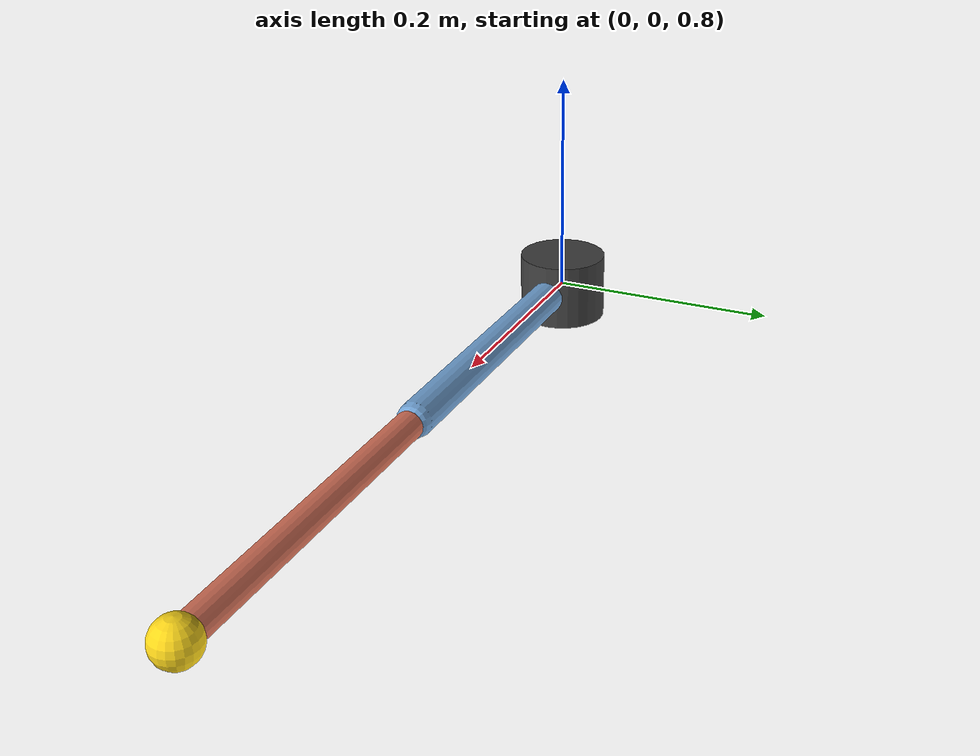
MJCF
<mujoco model="rotary_double_pendulum">

  <compiler angle="radian" autolimits="true"/>

  <option timestep="0.005" gravity="0 0 -9.81" integrator="RK4"/>

  <default>
    <joint damping="0.07" armature="0.002" frictionloss="0.001"/>
    <geom contype="0" conaffinity="0"/>
  </default>

  <worldbody>

    <body name="base" pos="0 0 0.8">

      <geom name="mount" type="cylinder" size="0.04 0.03" rgba="0.25 0.25 0.25 1" mass="0.0"/>

      <body name="link1" pos="0 0 0">
        <joint name="joint1" type="hinge" axis="0 -1 0" pos="0 0 0"/>
        <geom name="link1_rod" type="capsule" fromto="0.01 0 0  0.30 0 0" size="0.015" mass="0.50" rgba="0.45 0.65 0.85 1"/>
        <inertial pos="0.15 0 0" mass="0.50" diaginertia="0.00010 0.00385 0.00385"/>

        <body name="link2" pos="0.30 0 0">
          <joint name="joint2" type="hinge" axis="0 -1 0" pos="0 0 0" range="-3.1416 3.1416"/>
          <geom name="link2_rod" type="capsule" fromto="0.01 0 0  0.30 0 0" size="0.012" mass="0.30" rgba="0.85 0.45 0.35 1"/>
          <inertial pos="0.15 0 0" mass="0.30" diaginertia="0.00006 0.00231 0.00231"/>
          <geom name="tip" type="sphere" size="0.018" pos="0.30 0 0" rgba="1.0 0.85 0.1 1" mass="0"/>
        </body>

      </body>
    </body>

  </worldbody>

  <actuator>
    <motor name="torque1" joint="joint1" gear="1" ctrllimited="false"/>
  </actuator>

  <sensor>
    <jointpos name="q1"  joint="joint1"/>
    <jointpos name="q2"  joint="joint2"/>
    <jointvel name="dq1" joint="joint1"/>
    <jointvel name="dq2" joint="joint2"/>
  </sensor>

</mujoco>
